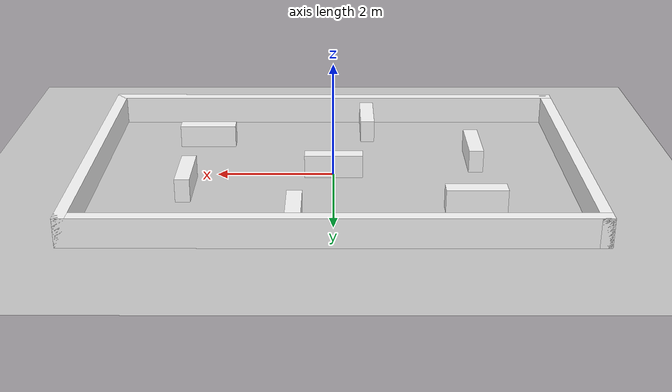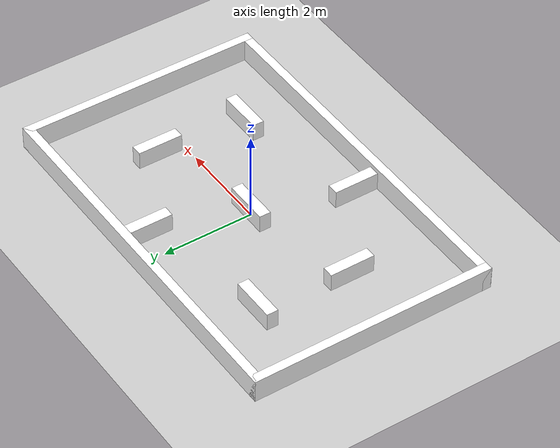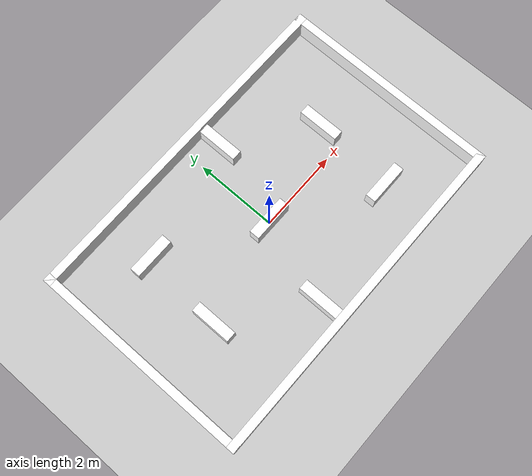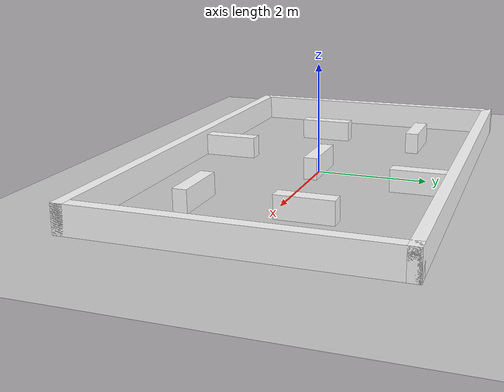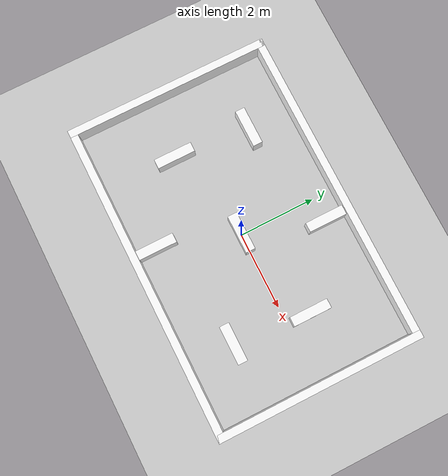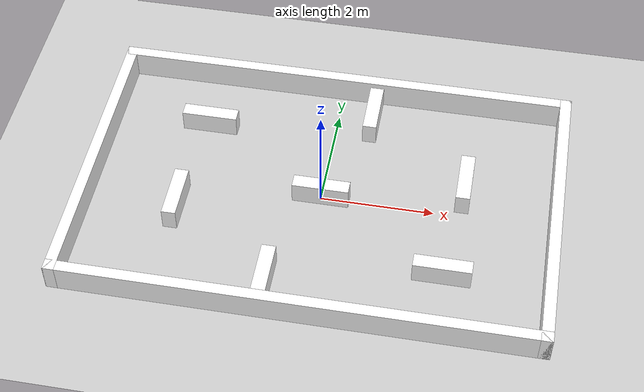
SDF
<?xml version="1.0" ?>
<sdf version="1.7">
    <world name="default">
        <!-- Physics -->
        <plugin
            filename="libignition-gazebo-physics-system.so"
            name="ignition::gazebo::systems::Physics"></plugin>
        <!-- Forwards simulation state to the GUI -->
        <plugin
            filename="libignition-gazebo-scene-broadcaster-system.so"
            name="ignition::gazebo::systems::SceneBroadcaster"></plugin>
        <!-- Processes user commands, like translate and create -->
        <plugin
            filename="libignition-gazebo-user-commands-system.so"
            name="ignition::gazebo::systems::UserCommands"></plugin>
        <!-- Generates rendering sensor data -->
        <plugin
            filename="libignition-gazebo-sensors-system.so"
            name="ignition::gazebo::systems::Sensors">
            <!-- ogre2 not working with just the MESA_GL_VERSION_OVERRIDE=3.3 trick -->
            <render_engine>ogre2</render_engine>
        </plugin>
        <plugin filename="libignition-gazebo-imu-system.so"
        		name="ignition::gazebo::systems::Imu"></plugin>
        <!--light-->
        <light type="directional" name="sun">
            <cast_shadows>true</cast_shadows>
            <pose>0 0 10 0 0 0</pose>
            <diffuse>0.8 0.8 0.8 1</diffuse>
            <specular>0.2 0.2 0.2 1</specular>
            <attenuation>
                <range>1000</range>
                <constant>0.3</constant>
                <linear>0.01</linear>
                <quadratic>0.001</quadratic>
            </attenuation>
            <direction>-0.5 0.1 -0.9</direction>
        </light>
        <!--competition area model-->
        <include>
            <uri>model://rmua19_battlefield</uri>
        </include>
    </world>
</sdf>

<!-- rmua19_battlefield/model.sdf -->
<!-- |    This document was autogenerated by xmacro from model.sdf.xmacro              | -->
<!-- |    EDITING THIS FILE BY HAND IS NOT RECOMMENDED                                 | -->
<sdf version="1.7">
	<!--macro defination:wall_visual_collision-->
	<model name="rmua19_battlefield">
		<static>1</static>
		<!--ground_plane-->
		<link name="ground_plane">
			<collision name="collision">
				<geometry>
					<plane>
						<normal>0 0 1</normal>
						<size>8 5</size>
					</plane>
				</geometry>
			</collision>
			<visual name="visual">
				<geometry>
					<plane>
						<normal>0 0 1</normal>
						<size>100 100</size>
					</plane>
				</geometry>
				<material>
					<ambient>0.8 0.8 0.8 1</ambient>
					<diffuse>0.8 0.8 0.8 1</diffuse>
					<specular>0.8 0.8 0.8 1</specular>
				</material>
			</visual>
		</link>
		<!--the wall for the competition area: 8*5 -->
		<link name="wall_1">
			<pose>0 2.6 0.25 0 0 0</pose>
			<collision name="collision">
				<geometry>
					<box>
						<size>8.4 0.2 0.5</size>
					</box>
				</geometry>
			</collision>
			<visual name="visual">
				<geometry>
					<box>
						<size>8.4 0.2 0.5</size>
					</box>
				</geometry>
				<material>
					<ambient>1 1 1 1</ambient>
					<diffuse>1 1 1 1</diffuse>
					<specular>1 1 1 1</specular>
					<pbr>
						<metal>
							<albedo_map>model://rmua19_battlefield/materials/textures/wood.jpg</albedo_map>
						</metal>
					</pbr>
				</material>
			</visual>
		</link>
		<link name="wall_2">
			<pose>0 -2.6 0.25 0 0 0</pose>
			<collision name="collision">
				<geometry>
					<box>
						<size>8.4 0.2 0.5</size>
					</box>
				</geometry>
			</collision>
			<visual name="visual">
				<geometry>
					<box>
						<size>8.4 0.2 0.5</size>
					</box>
				</geometry>
				<material>
					<ambient>1 1 1 1</ambient>
					<diffuse>1 1 1 1</diffuse>
					<specular>1 1 1 1</specular>
					<pbr>
						<metal>
							<albedo_map>model://rmua19_battlefield/materials/textures/wood.jpg</albedo_map>
						</metal>
					</pbr>
				</material>
			</visual>
		</link>
		<link name="wall_3">
			<pose>4.1 0 0.25 0 0 0</pose>
			<collision name="collision">
				<geometry>
					<box>
						<size>0.2 5.4 0.5</size>
					</box>
				</geometry>
			</collision>
			<visual name="visual">
				<geometry>
					<box>
						<size>0.2 5.4 0.5</size>
					</box>
				</geometry>
				<material>
					<ambient>1 1 1 1</ambient>
					<diffuse>1 1 1 1</diffuse>
					<specular>1 1 1 1</specular>
					<pbr>
						<metal>
							<albedo_map>model://rmua19_battlefield/materials/textures/wood.jpg</albedo_map>
						</metal>
					</pbr>
				</material>
			</visual>
		</link>
		<link name="wall_4">
			<pose>-4.1 0 0.25 0 0 0</pose>
			<collision name="collision">
				<geometry>
					<box>
						<size>0.2 5.4 0.5</size>
					</box>
				</geometry>
			</collision>
			<visual name="visual">
				<geometry>
					<box>
						<size>0.2 5.4 0.5</size>
					</box>
				</geometry>
				<material>
					<ambient>1 1 1 1</ambient>
					<diffuse>1 1 1 1</diffuse>
					<specular>1 1 1 1</specular>
					<pbr>
						<metal>
							<albedo_map>model://rmua19_battlefield/materials/textures/wood.jpg</albedo_map>
						</metal>
					</pbr>
				</material>
			</visual>
		</link>
		<!-- immovable wooden obstacles :  1 × 0.25 × 0.4-->
		<link name="obstacle_1">
			<pose>0 0 0.2 0 0 0</pose>
			<collision name="collision">
				<geometry>
					<box>
						<size>1.0 0.25 0.4</size>
					</box>
				</geometry>
			</collision>
			<visual name="visual">
				<geometry>
					<box>
						<size>1.0 0.25 0.4</size>
					</box>
				</geometry>
				<material>
					<ambient>1 1 1 1</ambient>
					<diffuse>1 1 1 1</diffuse>
					<specular>1 1 1 1</specular>
					<pbr>
						<metal>
							<albedo_map>model://rmua19_battlefield/materials/textures/wood.jpg</albedo_map>
						</metal>
					</pbr>
				</material>
			</visual>
		</link>
		<link name="obstacle_2">
			<pose>-2.3 1.375 0.2 0 0 0</pose>
			<collision name="collision">
				<geometry>
					<box>
						<size>1.0 0.25 0.4</size>
					</box>
				</geometry>
			</collision>
			<visual name="visual">
				<geometry>
					<box>
						<size>1.0 0.25 0.4</size>
					</box>
				</geometry>
				<material>
					<ambient>1 1 1 1</ambient>
					<diffuse>1 1 1 1</diffuse>
					<specular>1 1 1 1</specular>
					<pbr>
						<metal>
							<albedo_map>model://rmua19_battlefield/materials/textures/wood.jpg</albedo_map>
						</metal>
					</pbr>
				</material>
			</visual>
		</link>
		<link name="obstacle_3">
			<pose>2.3 -1.375 0.2 0 0 0</pose>
			<collision name="collision">
				<geometry>
					<box>
						<size>1.0 0.25 0.4</size>
					</box>
				</geometry>
			</collision>
			<visual name="visual">
				<geometry>
					<box>
						<size>1.0 0.25 0.4</size>
					</box>
				</geometry>
				<material>
					<ambient>1 1 1 1</ambient>
					<diffuse>1 1 1 1</diffuse>
					<specular>1 1 1 1</specular>
					<pbr>
						<metal>
							<albedo_map>model://rmua19_battlefield/materials/textures/wood.jpg</albedo_map>
						</metal>
					</pbr>
				</material>
			</visual>
		</link>
		<link name="obstacle_4">
			<pose>0.625 2 0.2 0 0 0</pose>
			<collision name="collision">
				<geometry>
					<box>
						<size>0.25 1.0 0.4</size>
					</box>
				</geometry>
			</collision>
			<visual name="visual">
				<geometry>
					<box>
						<size>0.25 1.0 0.4</size>
					</box>
				</geometry>
				<material>
					<ambient>1 1 1 1</ambient>
					<diffuse>1 1 1 1</diffuse>
					<specular>1 1 1 1</specular>
					<pbr>
						<metal>
							<albedo_map>model://rmua19_battlefield/materials/textures/wood.jpg</albedo_map>
						</metal>
					</pbr>
				</material>
			</visual>
		</link>
		<link name="obstacle_5">
			<pose>-0.625 -2 0.2 0 0 0</pose>
			<collision name="collision">
				<geometry>
					<box>
						<size>0.25 1.0 0.4</size>
					</box>
				</geometry>
			</collision>
			<visual name="visual">
				<geometry>
					<box>
						<size>0.25 1.0 0.4</size>
					</box>
				</geometry>
				<material>
					<ambient>1 1 1 1</ambient>
					<diffuse>1 1 1 1</diffuse>
					<specular>1 1 1 1</specular>
					<pbr>
						<metal>
							<albedo_map>model://rmua19_battlefield/materials/textures/wood.jpg</albedo_map>
						</metal>
					</pbr>
				</material>
			</visual>
		</link>
		<link name="obstacle_6">
			<pose>2.475 0.6 0.2 0 0 0</pose>
			<collision name="collision">
				<geometry>
					<box>
						<size>0.25 1.0 0.4</size>
					</box>
				</geometry>
			</collision>
			<visual name="visual">
				<geometry>
					<box>
						<size>0.25 1.0 0.4</size>
					</box>
				</geometry>
				<material>
					<ambient>1 1 1 1</ambient>
					<diffuse>1 1 1 1</diffuse>
					<specular>1 1 1 1</specular>
					<pbr>
						<metal>
							<albedo_map>model://rmua19_battlefield/materials/textures/wood.jpg</albedo_map>
						</metal>
					</pbr>
				</material>
			</visual>
		</link>
		<link name="obstacle_7">
			<pose>-2.475 -0.6 0.2 0 0 0</pose>
			<collision name="collision">
				<geometry>
					<box>
						<size>0.25 1.0 0.4</size>
					</box>
				</geometry>
			</collision>
			<visual name="visual">
				<geometry>
					<box>
						<size>0.25 1.0 0.4</size>
					</box>
				</geometry>
				<material>
					<ambient>1 1 1 1</ambient>
					<diffuse>1 1 1 1</diffuse>
					<specular>1 1 1 1</specular>
					<pbr>
						<metal>
							<albedo_map>model://rmua19_battlefield/materials/textures/wood.jpg</albedo_map>
						</metal>
					</pbr>
				</material>
			</visual>
		</link>
	</model>
</sdf>
